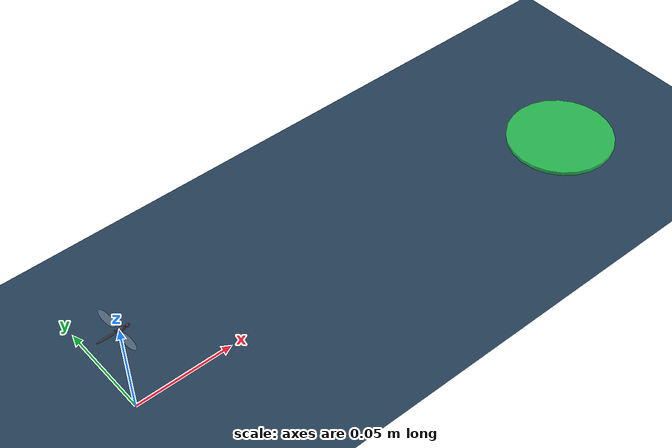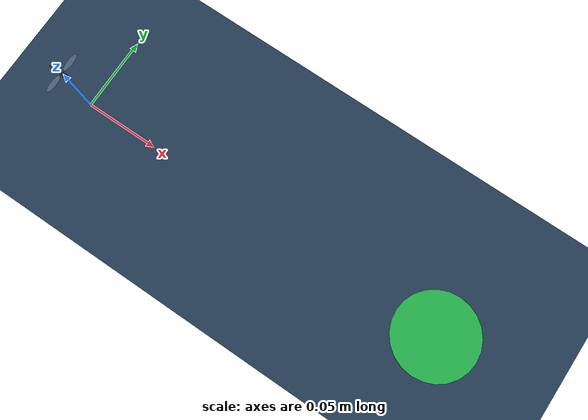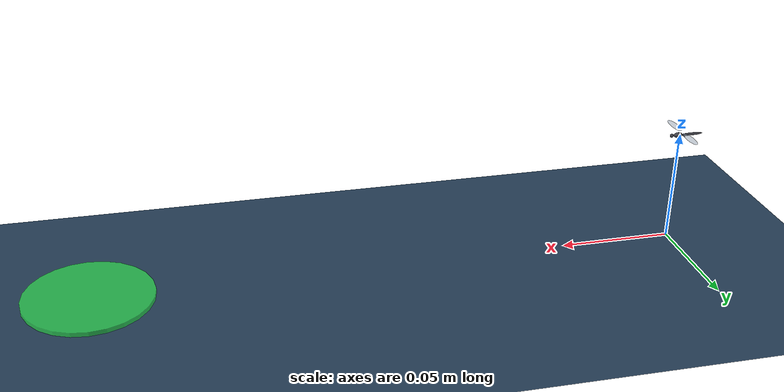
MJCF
<mujoco model="flapping_flyer">

  <option timestep="1e-4" gravity="0 0 -9.81" integrator="implicitfast"/>

  <!-- ===================== VISUALS (menagerie look) ===================== -->
  <visual>
    <headlight diffuse="0.6 0.6 0.6" ambient="0.3 0.3 0.3" specular="0 0 0"/>
    <rgba haze="0.15 0.25 0.35 1"/>
    <global azimuth="120" elevation="-20" offwidth="1280" offheight="960"/>
  </visual>

  <asset>
    <texture type="skybox" builtin="gradient" rgb1="0.3 0.5 0.7" rgb2="0 0 0"
             width="512" height="3072"/>
    <texture type="2d" name="groundplane" builtin="checker" mark="edge"
             rgb1="0.2 0.3 0.4" rgb2="0.1 0.2 0.3" markrgb="0.8 0.8 0.8"
             width="300" height="300"/>
    <material name="groundplane" texture="groundplane" texuniform="true"
              texrepeat="5 5" reflectance="0.2"/>
    <material name="thorax_mat" rgba="0.25 0.25 0.28 1"/>
    <material name="wing_mat"   rgba="0.55 0.62 0.70 0.45"/>
  </asset>

  <default>
    <joint damping="1e-8" armature="0"/>
    <geom density="1200"/>
  </default>

  <worldbody>
    <light pos="0 0 0.3" dir="0 0 -1" directional="true"
           diffuse="0.7 0.7 0.7"/>
    <geom name="floor" type="plane" size="0 0 0.01" material="groundplane"/>
    <geom name="bw0" type="box" pos="0.0000 0.0320 0.0400" size="0.0050 0.0050 0.0400" group="3" rgba="0.62 0.66 0.72 1" contype="0" conaffinity="0"/>
    <geom name="bw1" type="box" pos="0.0069 0.0320 0.0400" size="0.0050 0.0050 0.0400" group="3" rgba="0.62 0.66 0.72 1" contype="0" conaffinity="0"/>
    <geom name="bw2" type="box" pos="0.0138 0.0320 0.0400" size="0.0050 0.0050 0.0400" group="3" rgba="0.62 0.66 0.72 1" contype="0" conaffinity="0"/>
    <geom name="bw3" type="box" pos="0.0208 0.0320 0.0400" size="0.0050 0.0050 0.0400" group="3" rgba="0.62 0.66 0.72 1" contype="0" conaffinity="0"/>
    <geom name="bw4" type="box" pos="0.0277 0.0320 0.0400" size="0.0050 0.0050 0.0400" group="3" rgba="0.62 0.66 0.72 1" contype="0" conaffinity="0"/>
    <geom name="bw5" type="box" pos="0.0346 0.0320 0.0400" size="0.0050 0.0050 0.0400" group="3" rgba="0.62 0.66 0.72 1" contype="0" conaffinity="0"/>
    <geom name="bw6" type="box" pos="0.0415 0.0320 0.0400" size="0.0050 0.0050 0.0400" group="3" rgba="0.62 0.66 0.72 1" contype="0" conaffinity="0"/>
    <geom name="bw7" type="box" pos="0.0485 0.0320 0.0400" size="0.0050 0.0050 0.0400" group="3" rgba="0.62 0.66 0.72 1" contype="0" conaffinity="0"/>
    <geom name="bw8" type="box" pos="0.0554 0.0320 0.0400" size="0.0050 0.0050 0.0400" group="3" rgba="0.62 0.66 0.72 1" contype="0" conaffinity="0"/>
    <geom name="bw9" type="box" pos="0.0623 0.0320 0.0400" size="0.0050 0.0050 0.0400" group="3" rgba="0.62 0.66 0.72 1" contype="0" conaffinity="0"/>
    <geom name="bw10" type="box" pos="0.0692 0.0320 0.0400" size="0.0050 0.0050 0.0400" group="3" rgba="0.62 0.66 0.72 1" contype="0" conaffinity="0"/>
    <geom name="bw11" type="box" pos="0.0762 0.0320 0.0400" size="0.0050 0.0050 0.0400" group="3" rgba="0.62 0.66 0.72 1" contype="0" conaffinity="0"/>
    <geom name="bw12" type="box" pos="0.0831 0.0320 0.0400" size="0.0050 0.0050 0.0400" group="3" rgba="0.62 0.66 0.72 1" contype="0" conaffinity="0"/>
    <geom name="bw13" type="box" pos="0.0900 0.0320 0.0400" size="0.0050 0.0050 0.0400" group="3" rgba="0.62 0.66 0.72 1" contype="0" conaffinity="0"/>
    <geom name="bw14" type="box" pos="0.1700 0.0320 0.0400" size="0.0050 0.0050 0.0400" group="3" rgba="0.62 0.66 0.72 1" contype="0" conaffinity="0"/>
    <geom name="bw15" type="box" pos="0.1769 0.0320 0.0400" size="0.0050 0.0050 0.0400" group="3" rgba="0.62 0.66 0.72 1" contype="0" conaffinity="0"/>
    <geom name="bw16" type="box" pos="0.1838 0.0320 0.0400" size="0.0050 0.0050 0.0400" group="3" rgba="0.62 0.66 0.72 1" contype="0" conaffinity="0"/>
    <geom name="bw17" type="box" pos="0.1908 0.0320 0.0400" size="0.0050 0.0050 0.0400" group="3" rgba="0.62 0.66 0.72 1" contype="0" conaffinity="0"/>
    <geom name="bw18" type="box" pos="0.1977 0.0320 0.0400" size="0.0050 0.0050 0.0400" group="3" rgba="0.62 0.66 0.72 1" contype="0" conaffinity="0"/>
    <geom name="bw19" type="box" pos="0.2046 0.0320 0.0400" size="0.0050 0.0050 0.0400" group="3" rgba="0.62 0.66 0.72 1" contype="0" conaffinity="0"/>
    <geom name="bw20" type="box" pos="0.2115 0.0320 0.0400" size="0.0050 0.0050 0.0400" group="3" rgba="0.62 0.66 0.72 1" contype="0" conaffinity="0"/>
    <geom name="bw21" type="box" pos="0.2185 0.0320 0.0400" size="0.0050 0.0050 0.0400" group="3" rgba="0.62 0.66 0.72 1" contype="0" conaffinity="0"/>
    <geom name="bw22" type="box" pos="0.2254 0.0320 0.0400" size="0.0050 0.0050 0.0400" group="3" rgba="0.62 0.66 0.72 1" contype="0" conaffinity="0"/>
    <geom name="bw23" type="box" pos="0.2323 0.0320 0.0400" size="0.0050 0.0050 0.0400" group="3" rgba="0.62 0.66 0.72 1" contype="0" conaffinity="0"/>
    <geom name="bw24" type="box" pos="0.2392 0.0320 0.0400" size="0.0050 0.0050 0.0400" group="3" rgba="0.62 0.66 0.72 1" contype="0" conaffinity="0"/>
    <geom name="bw25" type="box" pos="0.2462 0.0320 0.0400" size="0.0050 0.0050 0.0400" group="3" rgba="0.62 0.66 0.72 1" contype="0" conaffinity="0"/>
    <geom name="bw26" type="box" pos="0.2531 0.0320 0.0400" size="0.0050 0.0050 0.0400" group="3" rgba="0.62 0.66 0.72 1" contype="0" conaffinity="0"/>
    <geom name="bw27" type="box" pos="0.2600 0.0320 0.0400" size="0.0050 0.0050 0.0400" group="3" rgba="0.62 0.66 0.72 1" contype="0" conaffinity="0"/>
    <geom name="bw28" type="box" pos="0.0000 -0.0320 0.0400" size="0.0050 0.0050 0.0400" group="3" rgba="0.62 0.66 0.72 1" contype="0" conaffinity="0"/>
    <geom name="bw29" type="box" pos="0.0068 -0.0320 0.0400" size="0.0050 0.0050 0.0400" group="3" rgba="0.62 0.66 0.72 1" contype="0" conaffinity="0"/>
    <geom name="bw30" type="box" pos="0.0137 -0.0320 0.0400" size="0.0050 0.0050 0.0400" group="3" rgba="0.62 0.66 0.72 1" contype="0" conaffinity="0"/>
    <geom name="bw31" type="box" pos="0.0205 -0.0320 0.0400" size="0.0050 0.0050 0.0400" group="3" rgba="0.62 0.66 0.72 1" contype="0" conaffinity="0"/>
    <geom name="bw32" type="box" pos="0.0274 -0.0320 0.0400" size="0.0050 0.0050 0.0400" group="3" rgba="0.62 0.66 0.72 1" contype="0" conaffinity="0"/>
    <geom name="bw33" type="box" pos="0.0342 -0.0320 0.0400" size="0.0050 0.0050 0.0400" group="3" rgba="0.62 0.66 0.72 1" contype="0" conaffinity="0"/>
    <geom name="bw34" type="box" pos="0.0411 -0.0320 0.0400" size="0.0050 0.0050 0.0400" group="3" rgba="0.62 0.66 0.72 1" contype="0" conaffinity="0"/>
    <geom name="bw35" type="box" pos="0.0479 -0.0320 0.0400" size="0.0050 0.0050 0.0400" group="3" rgba="0.62 0.66 0.72 1" contype="0" conaffinity="0"/>
    <geom name="bw36" type="box" pos="0.0547 -0.0320 0.0400" size="0.0050 0.0050 0.0400" group="3" rgba="0.62 0.66 0.72 1" contype="0" conaffinity="0"/>
    <geom name="bw37" type="box" pos="0.0616 -0.0320 0.0400" size="0.0050 0.0050 0.0400" group="3" rgba="0.62 0.66 0.72 1" contype="0" conaffinity="0"/>
    <geom name="bw38" type="box" pos="0.0684 -0.0320 0.0400" size="0.0050 0.0050 0.0400" group="3" rgba="0.62 0.66 0.72 1" contype="0" conaffinity="0"/>
    <geom name="bw39" type="box" pos="0.0753 -0.0320 0.0400" size="0.0050 0.0050 0.0400" group="3" rgba="0.62 0.66 0.72 1" contype="0" conaffinity="0"/>
    <geom name="bw40" type="box" pos="0.0821 -0.0320 0.0400" size="0.0050 0.0050 0.0400" group="3" rgba="0.62 0.66 0.72 1" contype="0" conaffinity="0"/>
    <geom name="bw41" type="box" pos="0.0889 -0.0320 0.0400" size="0.0050 0.0050 0.0400" group="3" rgba="0.62 0.66 0.72 1" contype="0" conaffinity="0"/>
    <geom name="bw42" type="box" pos="0.0958 -0.0320 0.0400" size="0.0050 0.0050 0.0400" group="3" rgba="0.62 0.66 0.72 1" contype="0" conaffinity="0"/>
    <geom name="bw43" type="box" pos="0.1026 -0.0320 0.0400" size="0.0050 0.0050 0.0400" group="3" rgba="0.62 0.66 0.72 1" contype="0" conaffinity="0"/>
    <geom name="bw44" type="box" pos="0.1095 -0.0320 0.0400" size="0.0050 0.0050 0.0400" group="3" rgba="0.62 0.66 0.72 1" contype="0" conaffinity="0"/>
    <geom name="bw45" type="box" pos="0.1163 -0.0320 0.0400" size="0.0050 0.0050 0.0400" group="3" rgba="0.62 0.66 0.72 1" contype="0" conaffinity="0"/>
    <geom name="bw46" type="box" pos="0.1232 -0.0320 0.0400" size="0.0050 0.0050 0.0400" group="3" rgba="0.62 0.66 0.72 1" contype="0" conaffinity="0"/>
    <geom name="bw47" type="box" pos="0.1300 -0.0320 0.0400" size="0.0050 0.0050 0.0400" group="3" rgba="0.62 0.66 0.72 1" contype="0" conaffinity="0"/>
    <geom name="bw48" type="box" pos="0.1368 -0.0320 0.0400" size="0.0050 0.0050 0.0400" group="3" rgba="0.62 0.66 0.72 1" contype="0" conaffinity="0"/>
    <geom name="bw49" type="box" pos="0.1437 -0.0320 0.0400" size="0.0050 0.0050 0.0400" group="3" rgba="0.62 0.66 0.72 1" contype="0" conaffinity="0"/>
    <geom name="bw50" type="box" pos="0.1505 -0.0320 0.0400" size="0.0050 0.0050 0.0400" group="3" rgba="0.62 0.66 0.72 1" contype="0" conaffinity="0"/>
    <geom name="bw51" type="box" pos="0.1574 -0.0320 0.0400" size="0.0050 0.0050 0.0400" group="3" rgba="0.62 0.66 0.72 1" contype="0" conaffinity="0"/>
    <geom name="bw52" type="box" pos="0.1642 -0.0320 0.0400" size="0.0050 0.0050 0.0400" group="3" rgba="0.62 0.66 0.72 1" contype="0" conaffinity="0"/>
    <geom name="bw53" type="box" pos="0.1711 -0.0320 0.0400" size="0.0050 0.0050 0.0400" group="3" rgba="0.62 0.66 0.72 1" contype="0" conaffinity="0"/>
    <geom name="bw54" type="box" pos="0.1779 -0.0320 0.0400" size="0.0050 0.0050 0.0400" group="3" rgba="0.62 0.66 0.72 1" contype="0" conaffinity="0"/>
    <geom name="bw55" type="box" pos="0.1847 -0.0320 0.0400" size="0.0050 0.0050 0.0400" group="3" rgba="0.62 0.66 0.72 1" contype="0" conaffinity="0"/>
    <geom name="bw56" type="box" pos="0.1916 -0.0320 0.0400" size="0.0050 0.0050 0.0400" group="3" rgba="0.62 0.66 0.72 1" contype="0" conaffinity="0"/>
    <geom name="bw57" type="box" pos="0.1984 -0.0320 0.0400" size="0.0050 0.0050 0.0400" group="3" rgba="0.62 0.66 0.72 1" contype="0" conaffinity="0"/>
    <geom name="bw58" type="box" pos="0.2053 -0.0320 0.0400" size="0.0050 0.0050 0.0400" group="3" rgba="0.62 0.66 0.72 1" contype="0" conaffinity="0"/>
    <geom name="bw59" type="box" pos="0.2121 -0.0320 0.0400" size="0.0050 0.0050 0.0400" group="3" rgba="0.62 0.66 0.72 1" contype="0" conaffinity="0"/>
    <geom name="bw60" type="box" pos="0.2189 -0.0320 0.0400" size="0.0050 0.0050 0.0400" group="3" rgba="0.62 0.66 0.72 1" contype="0" conaffinity="0"/>
    <geom name="bw61" type="box" pos="0.2258 -0.0320 0.0400" size="0.0050 0.0050 0.0400" group="3" rgba="0.62 0.66 0.72 1" contype="0" conaffinity="0"/>
    <geom name="bw62" type="box" pos="0.2326 -0.0320 0.0400" size="0.0050 0.0050 0.0400" group="3" rgba="0.62 0.66 0.72 1" contype="0" conaffinity="0"/>
    <geom name="bw63" type="box" pos="0.2395 -0.0320 0.0400" size="0.0050 0.0050 0.0400" group="3" rgba="0.62 0.66 0.72 1" contype="0" conaffinity="0"/>
    <geom name="bw64" type="box" pos="0.2463 -0.0320 0.0400" size="0.0050 0.0050 0.0400" group="3" rgba="0.62 0.66 0.72 1" contype="0" conaffinity="0"/>
    <geom name="bw65" type="box" pos="0.2532 -0.0320 0.0400" size="0.0050 0.0050 0.0400" group="3" rgba="0.62 0.66 0.72 1" contype="0" conaffinity="0"/>
    <geom name="bw66" type="box" pos="0.2600 -0.0320 0.0400" size="0.0050 0.0050 0.0400" group="3" rgba="0.62 0.66 0.72 1" contype="0" conaffinity="0"/>
    <geom name="fin0" type="cylinder" pos="0.2600 0.0000 0.001" size="0.0280 0.001" rgba="0.2 0.85 0.35 0.85" group="2" contype="0" conaffinity="0"/>

    <body name="thorax" pos="0 0 0.05">

      <!-- main flight mass: thorax block, just below the wing hinges -->
      <geom name="thorax_g" type="ellipsoid" pos="0.001 0 0"
            size="0.0020 0.0012 0.0012" mass="60e-6" material="thorax_mat"/>
      <!-- head: small, forward -->
      <geom name="head_g" type="sphere" pos="0.0040 0 0"
            size="0.0008" mass="3e-6" material="thorax_mat"/>
      <!-- abdomen / tail: long, THIN, LIGHT, trailing aft. Tapered ellipsoid
           reads as an abdomen and gives a little aft area for pitch stability
           at almost no mass cost. -->
      <geom name="tail_g" type="ellipsoid" pos="-0.0055 0 0"
            size="0.0050 0.0006 0.0006" mass="12e-6" material="thorax_mat"/>

      <!-- halteres: tiny nubs just behind the wing bases. Visual now,
           EARMARKED as the future rate sensor. Mass ~0.1 mg each (negligible). -->
      <geom name="haltere_R" type="capsule" fromto="-0.0008 0.0007 0  -0.0016 0.0016 -0.0004"
            size="0.00012" mass="1e-7" material="thorax_mat"/>
      <geom name="haltere_L" type="capsule" fromto="-0.0008 -0.0007 0  -0.0016 -0.0016 -0.0004"
            size="0.00012" mass="1e-7" material="thorax_mat"/>

      <!-- ============ RIGHT WING (extends +y) ============
           shoulder above & right of the thorax centre -->
      <body name="stroke_R" pos="0 0.0010 0.0012">
        <joint name="stroke_R" type="hinge" axis="0 0 1" range="-90 90" armature="1e-8"/>
        <inertial pos="0 0 0" mass="1e-7" diaginertia="1e-13 1e-13 1e-13"/>
        <body name="wing_R" pos="0 0 0">
          <joint name="pitch_R" type="hinge" axis="0 1 0" range="-120 120" armature="1e-8"/>
          <geom name="wing_R_g" type="ellipsoid" pos="-0.000875 0.0066 0"
                size="0.00175 0.0060 0.000025" material="wing_mat"
                mass="1.0e-6"/>
        </body>
      </body>

      <!-- ============ LEFT WING (extends -y) ============ -->
      <body name="stroke_L" pos="0 -0.0010 0.0012">
        <joint name="stroke_L" type="hinge" axis="0 0 1" range="-90 90" armature="1e-8"/>
        <inertial pos="0 0 0" mass="1e-7" diaginertia="1e-13 1e-13 1e-13"/>
        <body name="wing_L" pos="0 0 0">
          <joint name="pitch_L" type="hinge" axis="0 1 0" range="-120 120" armature="1e-8"/>
          <geom name="wing_L_g" type="ellipsoid" pos="-0.000875 -0.0066 0"
                size="0.00175 0.0060 0.000025" material="wing_mat"
                mass="1.0e-6"/>
        </body>
      </body>
    </body>
  </worldbody>

  <!-- Position actuators on the four hinges. Gains kept gentle so they are
       stable under implicitfast; Stage 2 may instead PRESCRIBE kinematics. -->
  <actuator>
    <position name="a_stroke_R" joint="stroke_R" kp="0.01" kv="1e-5"/>
    <position name="a_pitch_R"  joint="pitch_R"  kp="0.01" kv="1e-5"/>
    <position name="a_stroke_L" joint="stroke_L" kp="0.01" kv="1e-5"/>
    <position name="a_pitch_L"  joint="pitch_L"  kp="0.01" kv="1e-5"/>
  </actuator>
</mujoco>
